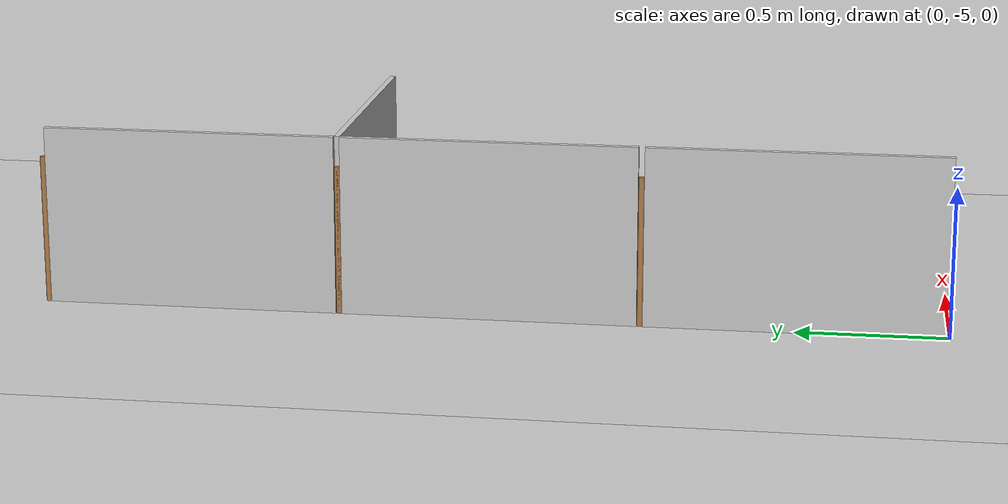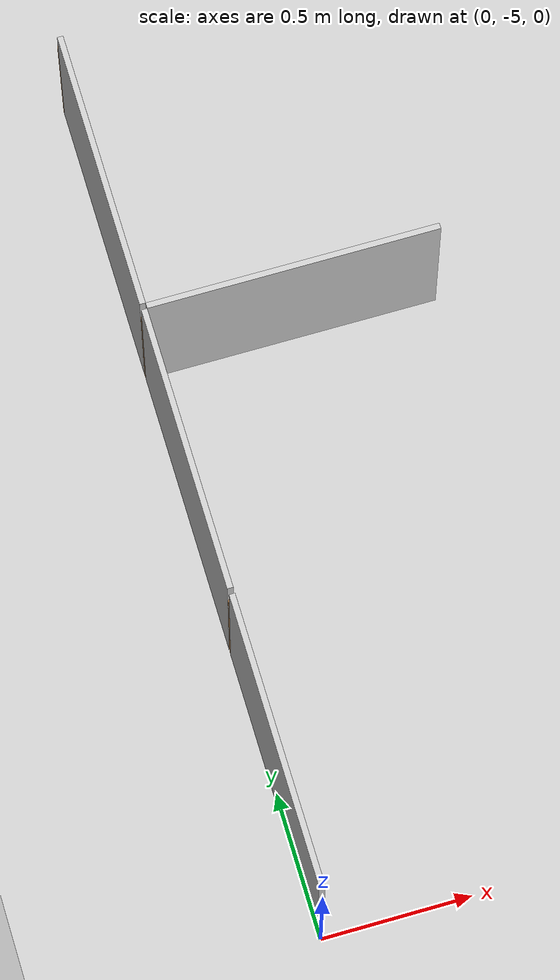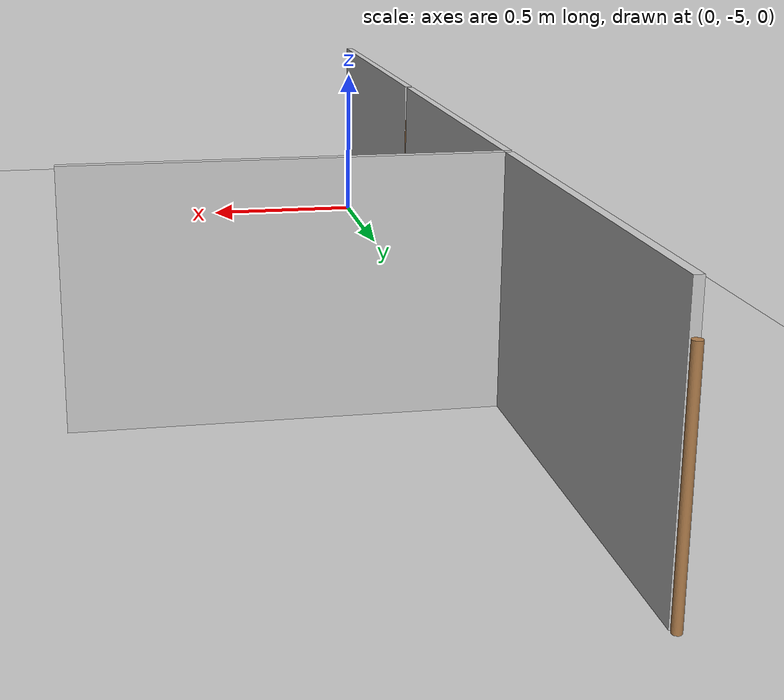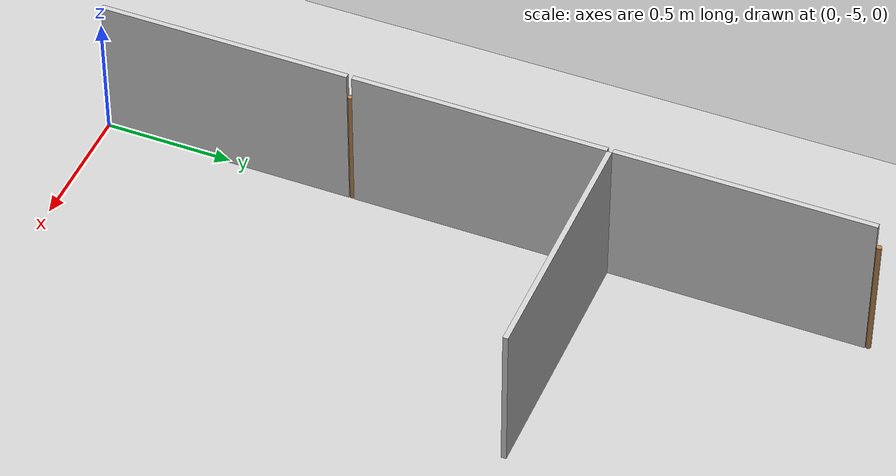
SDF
<sdf version="1.7">
 <world name="default">
  <model name="ground_plane">
   <static>true</static>
   <link name="link">
    <collision name="collision">
     <geometry><plane><normal>0 0 1</normal><size>1 1</size></plane></geometry>
    </collision>
    <visual name="visual">
     <geometry><plane><normal>0 0 1</normal><size>100 100</size></plane></geometry>
     <material>
      <ambient>0.8 0.8 0.8 1</ambient>
      <diffuse>0.8 0.8 0.8 1</diffuse>
      <specular>0.8 0.8 0.8 1</specular>
     </material>
    </visual>
    <inertial>
     <mass>1</mass>
     <inertia><ixx>1</ixx><ixy>0</ixy><ixz>0</ixz><iyy>1</iyy><iyz>0</iyz><izz>1</izz></inertia>
    </inertial>
   </link>
  </model>
  <model name="maze_1_6x5_clone_1_clone">
   <frame name="plywood_panel_0_0_b::__model__" attached_to="plywood_panel_0_0_b::main">
    <pose relative_to="__model__">0 0 0 0 -0 1.571</pose>
   </frame>
   <static>true</static>
   <link name="plywood_panel_0_0_b::main">
    <pose relative_to="plywood_panel_0_0_b::__model__">0 0 0 0 -0 0</pose>
    <collision name="collision">
     <pose>0 -0.5 0.3 -1.571 -0 -1.571</pose>
     <geometry><box><size>0.98 0.6 0.02</size></box></geometry>
    </collision>
    <visual name="visual">
     <pose>0.01 -0.01 0 3.14159 -1.57059 3.14159</pose>
     <geometry>
      <mesh>
       <scale>1 1 1</scale>
       <uri>/home/mayank/cognipilot/cranium/src/dream_world/models/plywood_panel/meshes/plywood.dae</uri>
      </mesh>
     </geometry>
    </visual>
   </link>
   <frame name="wooden_joint_0_0_b::__model__" attached_to="wooden_joint_0_0_b::link_0">
    <pose relative_to="__model__">0 0 0 0 -0 0</pose>
   </frame>
   <link name="wooden_joint_0_0_b::link_0">
    <pose relative_to="wooden_joint_0_0_b::__model__">0 0 0.25 0 -0 0</pose>
    <inertial>
     <mass>0.00215981</mass>
     <inertia>
      <ixx>0.00018028</ixx>
      <ixy>0</ixy>
      <ixz>0</ixz>
      <iyy>0.00018028</iyy>
      <iyz>0</iyz>
      <izz>5.8e-07</izz>
     </inertia>
    </inertial>
    <visual name="visual">
     <geometry><cylinder><radius>0.01</radius><length>0.5</length></cylinder></geometry>
     <material>
      <lighting>1</lighting>
      <script><uri>file://media/materials/scripts/gazebo.material</uri><name>Gazebo/Wood</name></script>
      <shader type="pixel"><normal_map>__default__</normal_map></shader>
      <ambient>0.3 0.3 0.3 1</ambient>
      <diffuse>0.7 0.7 0.7 1</diffuse>
      <specular>0.01 0.01 0.01 1</specular>
      <emissive>0 0 0 1</emissive>
     </material>
    </visual>
    <collision name="collision">
     <geometry><cylinder><radius>0.01</radius><length>0.5</length></cylinder></geometry>
     <surface>
      <friction>
       <ode><mu>1</mu><mu2>1</mu2><fdir1>0 0 0</fdir1><slip1>0</slip1><slip2>0</slip2></ode>
       <torsional>
        <coefficient>1</coefficient>
        <patch_radius>0</patch_radius>
        <surface_radius>0</surface_radius>
        <use_patch_radius>1</use_patch_radius>
        <ode><slip>0</slip></ode>
       </torsional>
      </friction>
      <bounce><restitution_coefficient>0</restitution_coefficient><threshold>1e+06</threshold></bounce>
      <contact>
       <collide_without_contact>0</collide_without_contact>
       <collide_without_contact_bitmask>1</collide_without_contact_bitmask>
       <collide_bitmask>1</collide_bitmask>
       <ode>
        <soft_cfm>0</soft_cfm>
        <soft_erp>0.2</soft_erp>
        <kp>1e+13</kp>
        <kd>1</kd>
        <max_vel>0.01</max_vel>
        <min_depth>0</min_depth>
       </ode>
       <bullet>
        <split_impulse>1</split_impulse>
        <split_impulse_penetration_threshold>-0.01</split_impulse_penetration_threshold>
        <soft_cfm>0</soft_cfm>
        <soft_erp>0.2</soft_erp>
        <kp>1e+13</kp>
        <kd>1</kd>
       </bullet>
      </contact>
     </surface>
    </collision>
   </link>
   <static>true</static>
   <pose>0 -4 0 0 0 -1.5708</pose>
  </model>
  <model name="maze_1_6x5_clone_1_clone_0">
   <frame name="plywood_panel_0_0_b::__model__" attached_to="plywood_panel_0_0_b::main">
    <pose relative_to="__model__">0 0 0 0 -0 1.571</pose>
   </frame>
   <static>true</static>
   <link name="plywood_panel_0_0_b::main">
    <pose relative_to="plywood_panel_0_0_b::__model__">0 0 0 0 -0 0</pose>
    <collision name="collision">
     <pose>0 -0.5 0.3 -1.571 -0 -1.571</pose>
     <geometry><box><size>0.98 0.6 0.02</size></box></geometry>
    </collision>
    <visual name="visual">
     <pose>0.01 -0.01 0 3.14159 -1.57059 3.14159</pose>
     <geometry>
      <mesh>
       <scale>1 1 1</scale>
       <uri>/home/mayank/cognipilot/cranium/src/dream_world/models/plywood_panel/meshes/plywood.dae</uri>
      </mesh>
     </geometry>
    </visual>
   </link>
   <frame name="wooden_joint_0_0_b::__model__" attached_to="wooden_joint_0_0_b::link_0">
    <pose relative_to="__model__">0 0 0 0 -0 0</pose>
   </frame>
   <link name="wooden_joint_0_0_b::link_0">
    <pose relative_to="wooden_joint_0_0_b::__model__">0 0 0.25 0 -0 0</pose>
    <inertial>
     <mass>0.00215981</mass>
     <inertia>
      <ixx>0.00018028</ixx>
      <ixy>0</ixy>
      <ixz>0</ixz>
      <iyy>0.00018028</iyy>
      <iyz>0</iyz>
      <izz>5.8e-07</izz>
     </inertia>
    </inertial>
    <visual name="visual">
     <geometry><cylinder><radius>0.01</radius><length>0.5</length></cylinder></geometry>
     <material>
      <lighting>1</lighting>
      <script><uri>file://media/materials/scripts/gazebo.material</uri><name>Gazebo/Wood</name></script>
      <shader type="pixel"><normal_map>__default__</normal_map></shader>
      <ambient>0.3 0.3 0.3 1</ambient>
      <diffuse>0.7 0.7 0.7 1</diffuse>
      <specular>0.01 0.01 0.01 1</specular>
      <emissive>0 0 0 1</emissive>
     </material>
    </visual>
    <collision name="collision">
     <geometry><cylinder><radius>0.01</radius><length>0.5</length></cylinder></geometry>
     <surface>
      <friction>
       <ode><mu>1</mu><mu2>1</mu2><fdir1>0 0 0</fdir1><slip1>0</slip1><slip2>0</slip2></ode>
       <torsional>
        <coefficient>1</coefficient>
        <patch_radius>0</patch_radius>
        <surface_radius>0</surface_radius>
        <use_patch_radius>1</use_patch_radius>
        <ode><slip>0</slip></ode>
       </torsional>
      </friction>
      <bounce><restitution_coefficient>0</restitution_coefficient><threshold>1e+06</threshold></bounce>
      <contact>
       <collide_without_contact>0</collide_without_contact>
       <collide_without_contact_bitmask>1</collide_without_contact_bitmask>
       <collide_bitmask>1</collide_bitmask>
       <ode>
        <soft_cfm>0</soft_cfm>
        <soft_erp>0.2</soft_erp>
        <kp>1e+13</kp>
        <kd>1</kd>
        <max_vel>0.01</max_vel>
        <min_depth>0</min_depth>
       </ode>
       <bullet>
        <split_impulse>1</split_impulse>
        <split_impulse_penetration_threshold>-0.01</split_impulse_penetration_threshold>
        <soft_cfm>0</soft_cfm>
        <soft_erp>0.2</soft_erp>
        <kp>1e+13</kp>
        <kd>1</kd>
       </bullet>
      </contact>
     </surface>
    </collision>
   </link>
   <static>true</static>
   <pose>0 -3 0 0 0 -1.5708</pose>
  </model>
  <model name="maze_1_6x5_clone_1_clone_1">
   <frame name="plywood_panel_0_0_b::__model__" attached_to="plywood_panel_0_0_b::main">
    <pose relative_to="__model__">0 0 0 0 -0 1.571</pose>
   </frame>
   <static>true</static>
   <link name="plywood_panel_0_0_b::main">
    <pose relative_to="plywood_panel_0_0_b::__model__">0 0 0 0 -0 0</pose>
    <collision name="collision">
     <pose>0 -0.5 0.3 -1.571 -0 -1.571</pose>
     <geometry><box><size>0.98 0.6 0.02</size></box></geometry>
    </collision>
    <visual name="visual">
     <pose>0.01 -0.01 0 3.14159 -1.57059 3.14159</pose>
     <geometry>
      <mesh>
       <scale>1 1 1</scale>
       <uri>/home/mayank/cognipilot/cranium/src/dream_world/models/plywood_panel/meshes/plywood.dae</uri>
      </mesh>
     </geometry>
    </visual>
   </link>
   <frame name="wooden_joint_0_0_b::__model__" attached_to="wooden_joint_0_0_b::link_0">
    <pose relative_to="__model__">0 0 0 0 -0 0</pose>
   </frame>
   <link name="wooden_joint_0_0_b::link_0">
    <pose relative_to="wooden_joint_0_0_b::__model__">0 0 0.25 0 -0 0</pose>
    <inertial>
     <mass>0.00215981</mass>
     <inertia>
      <ixx>0.00018028</ixx>
      <ixy>0</ixy>
      <ixz>0</ixz>
      <iyy>0.00018028</iyy>
      <iyz>0</iyz>
      <izz>5.8e-07</izz>
     </inertia>
    </inertial>
    <visual name="visual">
     <geometry><cylinder><radius>0.01</radius><length>0.5</length></cylinder></geometry>
     <material>
      <lighting>1</lighting>
      <script><uri>file://media/materials/scripts/gazebo.material</uri><name>Gazebo/Wood</name></script>
      <shader type="pixel"><normal_map>__default__</normal_map></shader>
      <ambient>0.3 0.3 0.3 1</ambient>
      <diffuse>0.7 0.7 0.7 1</diffuse>
      <specular>0.01 0.01 0.01 1</specular>
      <emissive>0 0 0 1</emissive>
     </material>
    </visual>
    <collision name="collision">
     <geometry><cylinder><radius>0.01</radius><length>0.5</length></cylinder></geometry>
     <surface>
      <friction>
       <ode><mu>1</mu><mu2>1</mu2><fdir1>0 0 0</fdir1><slip1>0</slip1><slip2>0</slip2></ode>
       <torsional>
        <coefficient>1</coefficient>
        <patch_radius>0</patch_radius>
        <surface_radius>0</surface_radius>
        <use_patch_radius>1</use_patch_radius>
        <ode><slip>0</slip></ode>
       </torsional>
      </friction>
      <bounce><restitution_coefficient>0</restitution_coefficient><threshold>1e+06</threshold></bounce>
      <contact>
       <collide_without_contact>0</collide_without_contact>
       <collide_without_contact_bitmask>1</collide_without_contact_bitmask>
       <collide_bitmask>1</collide_bitmask>
       <ode>
        <soft_cfm>0</soft_cfm>
        <soft_erp>0.2</soft_erp>
        <kp>1e+13</kp>
        <kd>1</kd>
        <max_vel>0.01</max_vel>
        <min_depth>0</min_depth>
       </ode>
       <bullet>
        <split_impulse>1</split_impulse>
        <split_impulse_penetration_threshold>-0.01</split_impulse_penetration_threshold>
        <soft_cfm>0</soft_cfm>
        <soft_erp>0.2</soft_erp>
        <kp>1e+13</kp>
        <kd>1</kd>
       </bullet>
      </contact>
     </surface>
    </collision>
   </link>
   <static>true</static>
   <pose>0 -2 0 0 0 -1.5708</pose>
  </model>
  <model name="maze_1_6x5_clone_2_clone_clone_clone">
   <frame name="plywood_panel_0_0_b::__model__" attached_to="plywood_panel_0_0_b::main">
    <pose relative_to="__model__">0 0 0 0 -0 1.571</pose>
   </frame>
   <static>true</static>
   <link name="plywood_panel_0_0_b::main">
    <pose relative_to="plywood_panel_0_0_b::__model__">0 0 0 0 -0 0</pose>
    <collision name="collision">
     <pose>0 -0.5 0.3 -1.571 -0 -1.571</pose>
     <geometry><box><size>0.98 0.6 0.02</size></box></geometry>
    </collision>
    <visual name="visual">
     <pose>0.01 -0.01 0 3.14159 -1.57059 3.14159</pose>
     <geometry>
      <mesh>
       <scale>1 1 1</scale>
       <uri>/home/mayank/cognipilot/cranium/src/dream_world/models/plywood_panel/meshes/plywood.dae</uri>
      </mesh>
     </geometry>
    </visual>
   </link>
   <frame name="wooden_joint_0_0_b::__model__" attached_to="wooden_joint_0_0_b::link_0">
    <pose relative_to="__model__">0 0 0 0 -0 0</pose>
   </frame>
   <link name="wooden_joint_0_0_b::link_0">
    <pose relative_to="wooden_joint_0_0_b::__model__">0 0 0.25 0 -0 0</pose>
    <inertial>
     <mass>0.00215981</mass>
     <inertia>
      <ixx>0.00018028</ixx>
      <ixy>0</ixy>
      <ixz>0</ixz>
      <iyy>0.00018028</iyy>
      <iyz>0</iyz>
      <izz>5.8e-07</izz>
     </inertia>
    </inertial>
    <visual name="visual">
     <geometry><cylinder><radius>0.01</radius><length>0.5</length></cylinder></geometry>
     <material>
      <lighting>1</lighting>
      <script><uri>file://media/materials/scripts/gazebo.material</uri><name>Gazebo/Wood</name></script>
      <shader type="pixel"><normal_map>__default__</normal_map></shader>
      <ambient>0.3 0.3 0.3 1</ambient>
      <diffuse>0.7 0.7 0.7 1</diffuse>
      <specular>0.01 0.01 0.01 1</specular>
      <emissive>0 0 0 1</emissive>
     </material>
    </visual>
    <collision name="collision">
     <geometry><cylinder><radius>0.01</radius><length>0.5</length></cylinder></geometry>
     <surface>
      <friction>
       <ode><mu>1</mu><mu2>1</mu2><fdir1>0 0 0</fdir1><slip1>0</slip1><slip2>0</slip2></ode>
       <torsional>
        <coefficient>1</coefficient>
        <patch_radius>0</patch_radius>
        <surface_radius>0</surface_radius>
        <use_patch_radius>1</use_patch_radius>
        <ode><slip>0</slip></ode>
       </torsional>
      </friction>
      <bounce><restitution_coefficient>0</restitution_coefficient><threshold>1e+06</threshold></bounce>
      <contact>
       <collide_without_contact>0</collide_without_contact>
       <collide_without_contact_bitmask>1</collide_without_contact_bitmask>
       <collide_bitmask>1</collide_bitmask>
       <ode>
        <soft_cfm>0</soft_cfm>
        <soft_erp>0.2</soft_erp>
        <kp>1e+13</kp>
        <kd>1</kd>
        <max_vel>0.01</max_vel>
        <min_depth>0</min_depth>
       </ode>
       <bullet>
        <split_impulse>1</split_impulse>
        <split_impulse_penetration_threshold>-0.01</split_impulse_penetration_threshold>
        <soft_cfm>0</soft_cfm>
        <soft_erp>0.2</soft_erp>
        <kp>1e+13</kp>
        <kd>1</kd>
       </bullet>
      </contact>
     </surface>
    </collision>
   </link>
   <static>true</static>
   <pose>0 -3 0 0 0 -4e-06</pose>
  </model>
 </world>
</sdf>
